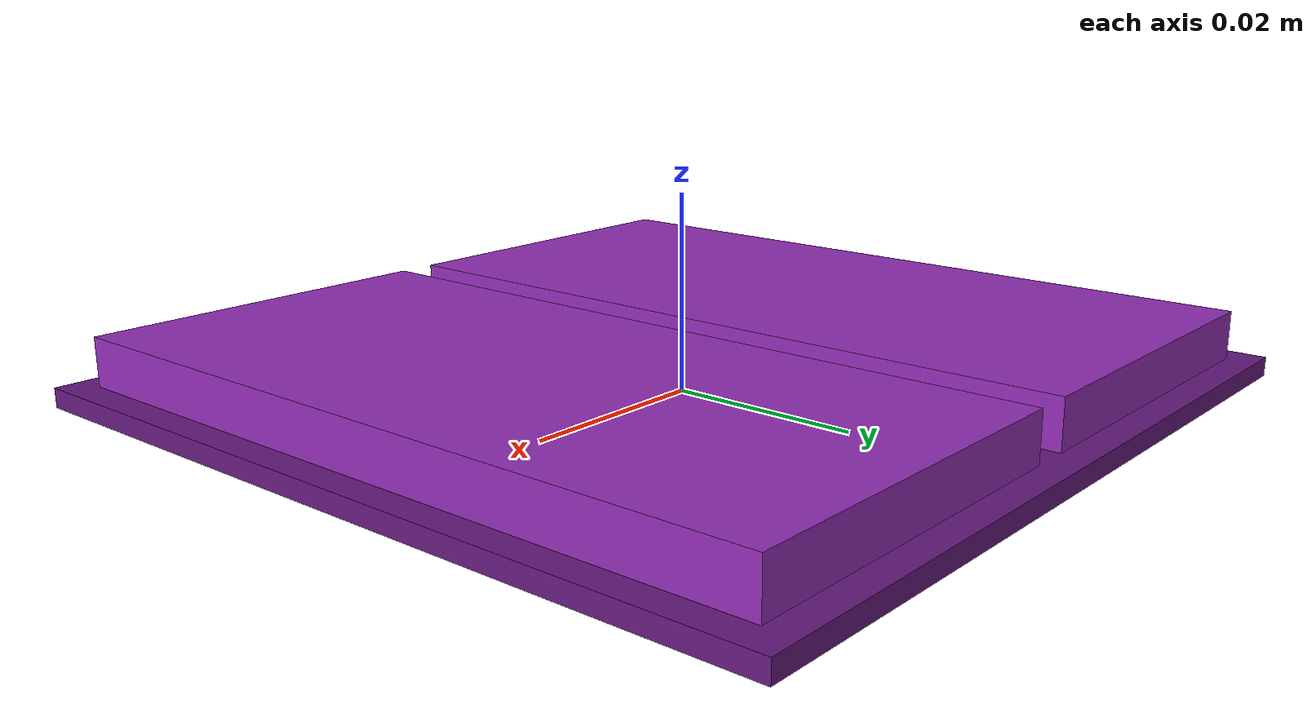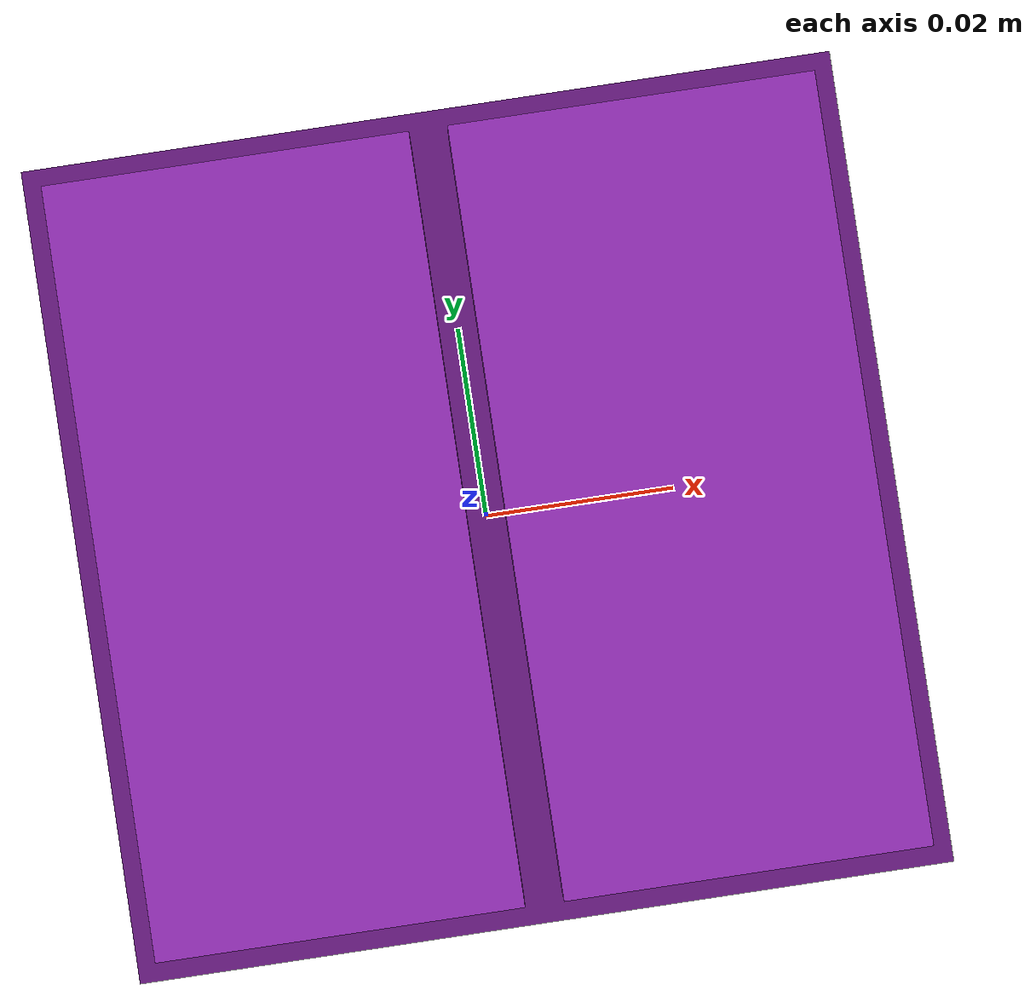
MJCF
<mujoco model="Switch_Quantity2_04">
  <asset>
    <material name="Switch_Quantity2_04_bezel" rgba="0.40 0.10 0.50 1" specular="0.8" shininess="0.85"/>
    <material name="Switch_Quantity2_04_btn1" rgba="0.58 0.18 0.72 1" specular="0.8" shininess="0.85"/>
    <material name="Switch_Quantity2_04_btn2" rgba="0.58 0.18 0.72 1" specular="0.8" shininess="0.85"/>
  </asset>
  <worldbody>
    <body name="Switch_Quantity2_04">
      <geom name="Switch_Quantity2_04_bezel" type="box"
            pos="0 0 0.001" size="0.043 0.043 0.001"
            material="Switch_Quantity2_04_bezel"/>
      <geom name="Switch_Quantity2_04_btn1" type="box"
            pos="-0.021 0 0.0035" size="0.019 0.04 0.0035"
            material="Switch_Quantity2_04_btn1"/>
      <geom name="Switch_Quantity2_04_btn2" type="box"
            pos="0.021 0 0.0035" size="0.019 0.04 0.0035"
            material="Switch_Quantity2_04_btn2"/>
    </body>
  </worldbody>
</mujoco>
